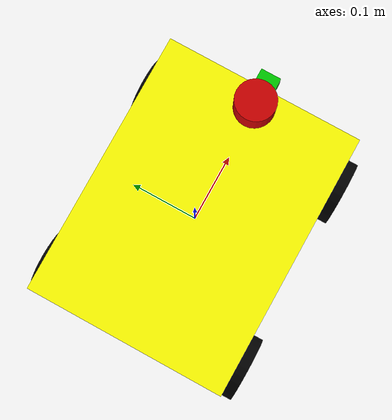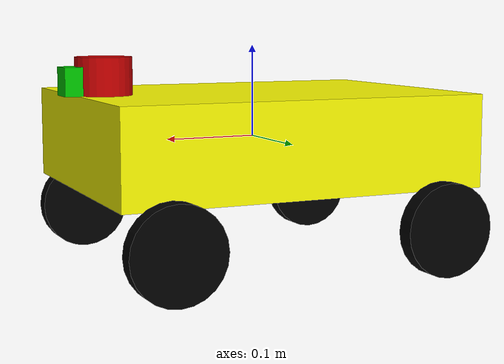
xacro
<?xml version="1.0"?>
<robot name="my_rectangular_robot" xmlns:xacro="http://www.ros.org/wiki/xacro">

  <!-- Propriedades comuns -->
  <xacro:property name="M_PI" value="3.1415926535897931" />
  <xacro:property name="base_width" value="0.30" />   <!-- Largura da base retangular -->
  <xacro:property name="base_length" value="0.40" />  <!-- Comprimento da base retangular -->
  <xacro:property name="base_height" value="0.10" />  <!-- Altura da base retangular -->
  <xacro:property name="base_mass" value="5.0" />     <!-- Massa da base -->

  <xacro:property name="wheel_radius" value="0.05" />
  <xacro:property name="wheel_width" value="0.02" />
  <xacro:property name="wheel_mass" value="0.5" />

  <!-- REMOVIDO: Propriedades da roda castor -->

  <xacro:property name="lidar_radius" value="0.03" />
  <xacro:property name="lidar_height" value="0.04" />
  <xacro:property name="lidar_mass" value="0.1" />

  <xacro:property name="camera_size" value="0.03" />
  <xacro:property name="camera_mass" value="0.05" />

  <!-- MACROS para inércia -->
  <xacro:macro name="box_inertia" params="m x y z">
    <inertia ixx="${m * (y*y + z*z) / 12}" ixy="0" ixz="0"
             iyy="${m * (x*x + z*z) / 12}" iyz="0"
             izz="${m * (x*x + y*y) / 12}" />
  </xacro:macro>

  <xacro:macro name="cylinder_inertia" params="m r h">
    <inertia ixx="${m * (3*r*r + h*h) / 12}" ixy="0" ixz="0"
             iyy="${m * (3*r*r + h*h) / 12}" iyz="0"
             izz="${m * r*r / 2}" />
  </xacro:macro>

  <xacro:macro name="sphere_inertia" params="m r">
    <inertia ixx="${2 * m * r*r / 5}" ixy="0" ixz="0"
             iyy="${2 * m * r*r / 5}" iyz="0"
             izz="${2 * m * r*r / 5}" />
  </xacro:macro>

  <!-- Base do Robô (retangular) -->
  <link name="base_link">
    <visual>
      <geometry>
        <box size="${base_length} ${base_width} ${base_height}" />
      </geometry>
      <material name="yellow"> <!-- MUDANÇA AQUI: Cor da base para amarelo -->
        <color rgba="1 1 0 1" />
      </material>
    </visual>
    <collision>
      <geometry>
        <box size="${base_length} ${base_width} ${base_height}" />
      </geometry>
    </collision>
    <inertial>
      <origin xyz="0 0 0" rpy="0 0 0" />
      <mass value="${base_mass}" />
      <xacro:box_inertia m="${base_mass}" x="${base_length}" y="${base_width}" z="${base_height}" />
    </inertial>
  </link>

  <!-- Rodas (quatro) -->
  <xacro:macro name="wheel" params="prefix x_offset y_offset">
    <link name="${prefix}_wheel_link">
      <visual>
        <origin xyz="0 0 0" rpy="${M_PI/2} 0 0" />
        <geometry>
          <cylinder radius="${wheel_radius}" length="${wheel_width}" />
        </geometry>
        <material name="black">
          <color rgba="0 0 0 1" />
        </material>
      </visual>
      <collision>
        <origin xyz="0 0 0" rpy="${M_PI/2} 0 0" />
        <geometry>
          <cylinder radius="${wheel_radius}" length="${wheel_width}" />
        </geometry>
      </collision>
      <inertial>
        <origin xyz="0 0 0" rpy="${M_PI/2} 0 0" />
        <mass value="${wheel_mass}" />
        <xacro:cylinder_inertia m="${wheel_mass}" r="${wheel_radius}" h="${wheel_width}" />
      </inertial>
    </link>

    <joint name="${prefix}_wheel_joint" type="continuous">
      <parent link="base_link" />
      <child link="${prefix}_wheel_link" />
      <origin xyz="${x_offset} ${y_offset} ${-(base_height/2 + wheel_radius - 0.01)}" rpy="0 0 0" />
      <axis xyz="0 1 0" />
    </joint>
  </xacro:macro>

  <!-- Posições das quatro rodas -->
  <xacro:wheel prefix="front_left" x_offset="${base_length/2 - wheel_radius}" y_offset="${base_width/2 + wheel_width/2}" />
  <xacro:wheel prefix="front_right" x_offset="${base_length/2 - wheel_radius}" y_offset="${-(base_width/2 + wheel_width/2)}" />
  <xacro:wheel prefix="rear_left" x_offset="${-(base_length/2 - wheel_radius)}" y_offset="${base_width/2 + wheel_width/2}" />
  <xacro:wheel prefix="rear_right" x_offset="${-(base_length/2 - wheel_radius)}" y_offset="${-(base_width/2 + wheel_width/2)}" />

  <!-- REMOVIDO: Caster Wheel -->

  <!-- Lidar Sensor -->
  <link name="lidar_link">
    <visual>
      <origin xyz="0 0 0" rpy="0 0 0" />
      <geometry>
        <cylinder radius="${lidar_radius}" length="${lidar_height}" />
      </geometry>
      <material name="red">
        <color rgba="0.8 0 0 1" />
      </material>
    </visual>
    <collision>
      <origin xyz="0 0 0" rpy="0 0 0" />
      <geometry>
        <cylinder radius="${lidar_radius}" length="${lidar_height}" />
      </geometry>
    </collision>
    <inertial>
      <origin xyz="0 0 0" rpy="0 0 0" />
      <mass value="${lidar_mass}" />
      <xacro:cylinder_inertia m="${lidar_mass}" r="${lidar_radius}" h="${lidar_height}" />
    </inertial>
  </link>

  <joint name="lidar_joint" type="fixed">
    <parent link="base_link" />
    <child link="lidar_link" />
    <origin xyz="${base_length/2 - lidar_radius} 0 ${base_height/2 + lidar_height/2}" rpy="0 0 0" />
  </joint>

  <!-- Camera Sensor -->
  <link name="camera_link">
    <visual>
      <origin xyz="0 0 0" rpy="0 0 0" />
      <geometry>
        <box size="${camera_size} ${camera_size} ${camera_size}" />
      </geometry>
      <material name="green">
        <color rgba="0 0.8 0 1" />
      </material>
    </visual>
    <collision>
      <origin xyz="0 0 0" rpy="0 0 0" />
      <geometry>
        <box size="${camera_size} ${camera_size} ${camera_size}" />
      </geometry>
    </collision>
    <inertial>
      <origin xyz="0 0 0" rpy="0 0 0" />
      <mass value="${camera_mass}" />
      <xacro:box_inertia m="${camera_mass}" x="${camera_size}" y="${camera_size}" z="${camera_size}" />
    </inertial>
  </link>

  <joint name="camera_joint" type="fixed">
    <parent link="base_link" />
    <child link="camera_link" />
    <origin xyz="${base_length/2} 0 ${base_height/2 + camera_size/2}" rpy="0 0 0" />
  </joint>

</robot>
